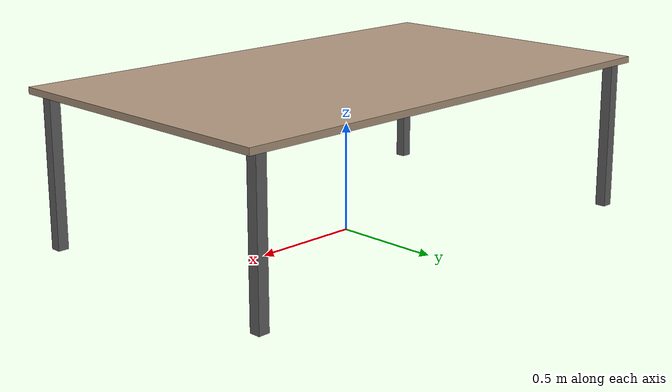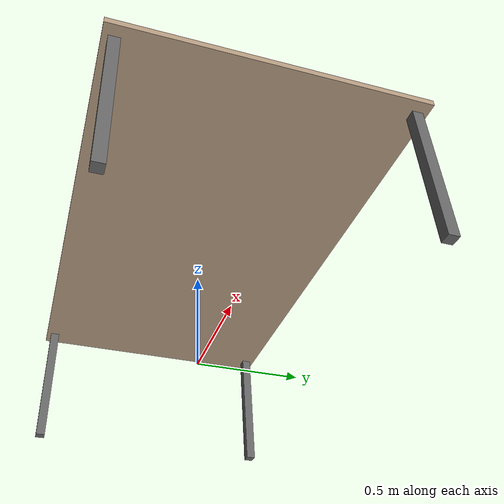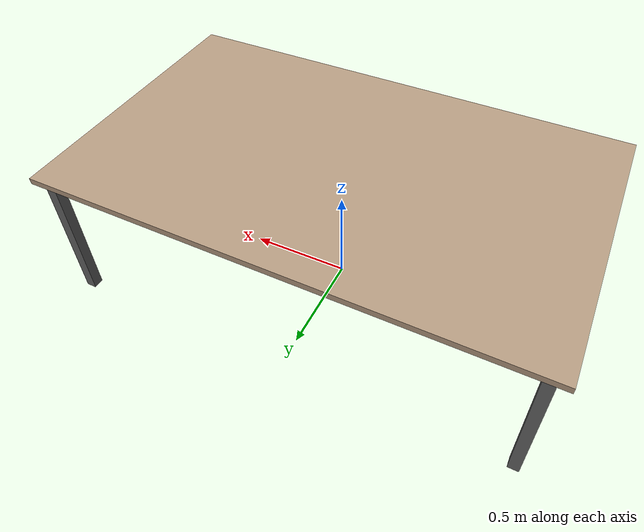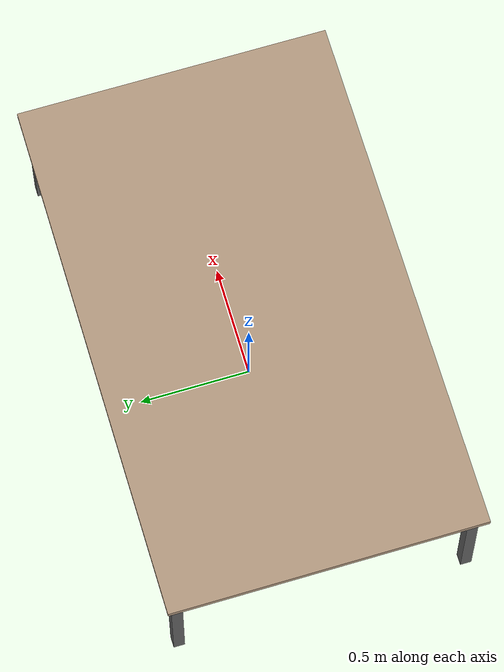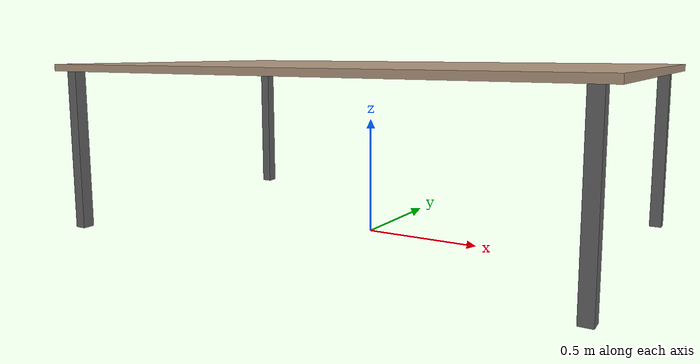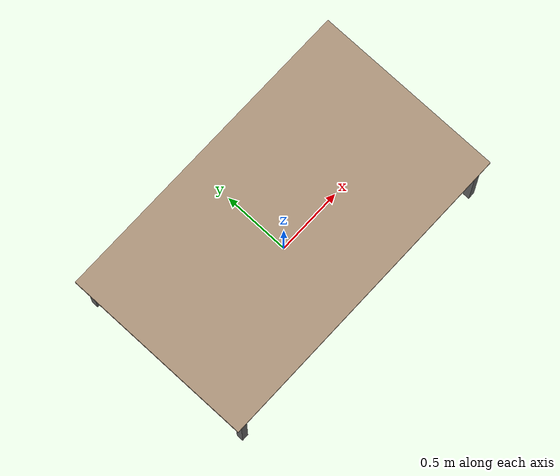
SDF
<?xml version="1.0"?>
<sdf version="1.8">
  <model name="modern_table">
    <static>true</static>
    <link name="link">
      <pose>0 0 0.74 0 0 0</pose>

      <!-- Larger collision surface: 2.35m x 1.4m (was 2.35 x 1) -->
      <collision name="surface">
        <pose>0 0 -0.015 0 0 0</pose>
        <geometry>
          <box>
            <size>2.35 1.4 0.03</size>
          </box>
        </geometry>
      </collision>

      <!-- Simple box visual for larger table surface -->
      <visual name="table_surface">
        <pose>0 0 -0.015 0 0 0</pose>
        <geometry>
          <box>
            <size>2.35 1.4 0.03</size>
          </box>
        </geometry>
        <material>
          <ambient>0.6 0.5 0.4 1</ambient>
          <diffuse>0.7 0.6 0.5 1</diffuse>
          <specular>0.2 0.2 0.2 1</specular>
        </material>
      </visual>

      <!-- Table legs (4 corners) -->
      <visual name="leg_front_left">
        <pose>1.1 0.65 -0.37 0 0 0</pose>
        <geometry>
          <box><size>0.05 0.05 0.70</size></box>
        </geometry>
        <material>
          <ambient>0.3 0.3 0.3 1</ambient>
          <diffuse>0.4 0.4 0.4 1</diffuse>
        </material>
      </visual>
      <visual name="leg_front_right">
        <pose>-1.1 0.65 -0.37 0 0 0</pose>
        <geometry>
          <box><size>0.05 0.05 0.70</size></box>
        </geometry>
        <material>
          <ambient>0.3 0.3 0.3 1</ambient>
          <diffuse>0.4 0.4 0.4 1</diffuse>
        </material>
      </visual>
      <visual name="leg_back_left">
        <pose>1.1 -0.65 -0.37 0 0 0</pose>
        <geometry>
          <box><size>0.05 0.05 0.70</size></box>
        </geometry>
        <material>
          <ambient>0.3 0.3 0.3 1</ambient>
          <diffuse>0.4 0.4 0.4 1</diffuse>
        </material>
      </visual>
      <visual name="leg_back_right">
        <pose>-1.1 -0.65 -0.37 0 0 0</pose>
        <geometry>
          <box><size>0.05 0.05 0.70</size></box>
        </geometry>
        <material>
          <ambient>0.3 0.3 0.3 1</ambient>
          <diffuse>0.4 0.4 0.4 1</diffuse>
        </material>
      </visual>
    </link>
  </model>
</sdf>
